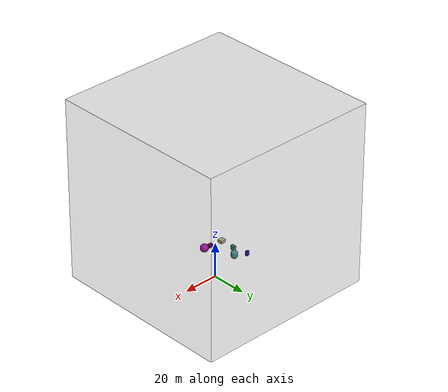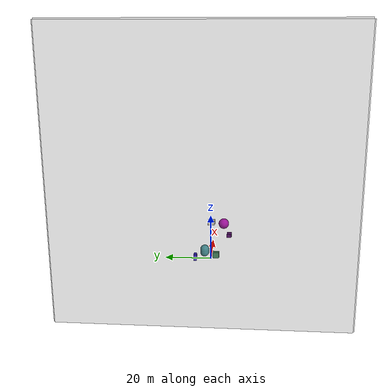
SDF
<!-- seed: 1724979624 -->
<sdf version='1.11'>
  <world name='world_0'>
    <gravity>0 0 -9.8066499999999994</gravity>
    <magnetic_field>5.5644999999999998e-06 2.2875799999999999e-05 -4.2388400000000002e-05</magnetic_field>
    <wind>
      <linear_velocity>0 1 2</linear_velocity>
    </wind>
    <physics default='false' type='ode'>
      <max_step_size>0.001</max_step_size>
      <real_time_factor>1</real_time_factor>
      <max_contacts>20</max_contacts>
    </physics>
    <model name='model_0'>
      <static>false</static>
      <self_collide>true</self_collide>
      <allow_auto_disable>true</allow_auto_disable>
      <enable_wind>false</enable_wind>
      <pose>-8.0707873542373481 -0.69772456056332288 2.2594010672318356 0 0 0</pose>
      <link name='link_2583'>
        <pose>-7.3045261040177634 -2.3845480290694665 6.9102654524008864 0 0 0</pose>
        <inertial>
          <pose>0 0 0 0 0 0</pose>
          <mass>1</mass>
          <inertia>
            <ixx>1</ixx>
            <ixy>0</ixy>
            <ixz>0</ixz>
            <iyy>1</iyy>
            <iyz>0</iyz>
            <izz>1</izz>
          </inertia>
        </inertial>
        <enable_wind>false</enable_wind>
        <collision name='collision_2583'>
          <pose>0 0 0 0 0 0</pose>
          <geometry>
            <box>
              <size>1.4634423946024051 2.443693463370165 2.3987163006066572</size>
            </box>
          </geometry>
          <surface>
            <contact>
              <collide_bitmask>255</collide_bitmask>
            </contact>
            <friction>
              <ode>
                <mu>1</mu>
                <mu2>1</mu2>
                <slip1>0</slip1>
                <slip2>0</slip2>
                <fdir1>0 0 0</fdir1>
              </ode>
            </friction>
          </surface>
        </collision>
        <visual name='visual_2583'>
          <pose>0 0 0 0 0 0</pose>
          <geometry>
            <box>
              <size>1.4634423946024051 2.443693463370165 2.3987163006066572</size>
            </box>
          </geometry>
          <cast_shadows>true</cast_shadows>
          <laser_retro>0</laser_retro>
          <transparency>0</transparency>
          <visibility_flags>4294967295</visibility_flags>
          <material>
            <ambient>0.261847019 0.533413112 0.366011858 1</ambient>
            <diffuse>0.261847019 0.533413112 0.366011858 1</diffuse>
            <specular>0 0 0 1</specular>
            <emissive>0 0 0 1</emissive>
            <render_order>0</render_order>
            <lighting>true</lighting>
            <double_sided>false</double_sided>
            <shader type='pixel'/>
          </material>
        </visual>
      </link>
      <link name='link_2584'>
        <pose>-3.4513834666565435 2.4692504897688536 6.7790588621172008 0 0 0</pose>
        <inertial>
          <pose>0 0 0 0 0 0</pose>
          <mass>1</mass>
          <inertia>
            <ixx>1</ixx>
            <ixy>0</ixy>
            <ixz>0</ixz>
            <iyy>1</iyy>
            <iyz>0</iyz>
            <izz>1</izz>
          </inertia>
        </inertial>
        <enable_wind>false</enable_wind>
        <collision name='collision_2584'>
          <pose>0 0 0 0 0 0</pose>
          <geometry>
            <capsule>
              <radius>1.8120755912079525</radius>
              <length>1.2311113815906576</length>
            </capsule>
          </geometry>
          <surface>
            <contact>
              <collide_bitmask>255</collide_bitmask>
            </contact>
            <friction>
              <ode>
                <mu>1</mu>
                <mu2>1</mu2>
                <slip1>0</slip1>
                <slip2>0</slip2>
                <fdir1>0 0 0</fdir1>
              </ode>
            </friction>
          </surface>
        </collision>
        <visual name='visual_2584'>
          <pose>0 0 0 0 0 0</pose>
          <geometry>
            <capsule>
              <radius>1.8120755912079525</radius>
              <length>1.2311113815906576</length>
            </capsule>
          </geometry>
          <cast_shadows>true</cast_shadows>
          <laser_retro>0</laser_retro>
          <transparency>0</transparency>
          <visibility_flags>4294967295</visibility_flags>
          <material>
            <ambient>0.277225971 0.597328305 0.623601854 1</ambient>
            <diffuse>0.277225971 0.597328305 0.623601854 1</diffuse>
            <specular>0 0 0 1</specular>
            <emissive>0 0 0 1</emissive>
            <render_order>0</render_order>
            <lighting>true</lighting>
            <double_sided>false</double_sided>
            <shader type='pixel'/>
          </material>
        </visual>
      </link>
      <link name='link_2585'>
        <pose>-9.2693195126829977 5.8635718097320684 6.5880485418258941 0 0 0</pose>
        <inertial>
          <pose>0 0 0 0 0 0</pose>
          <mass>1</mass>
          <inertia>
            <ixx>1</ixx>
            <ixy>0</ixy>
            <ixz>0</ixz>
            <iyy>1</iyy>
            <iyz>0</iyz>
            <izz>1</izz>
          </inertia>
        </inertial>
        <enable_wind>false</enable_wind>
        <collision name='collision_2585'>
          <pose>0 0 0 0 0 0</pose>
          <geometry>
            <box>
              <size>1.5711649135017587 1.143254955082583 2.6854664915171185</size>
            </box>
          </geometry>
          <surface>
            <contact>
              <collide_bitmask>255</collide_bitmask>
            </contact>
            <friction>
              <ode>
                <mu>1</mu>
                <mu2>1</mu2>
                <slip1>0</slip1>
                <slip2>0</slip2>
                <fdir1>0 0 0</fdir1>
              </ode>
            </friction>
          </surface>
        </collision>
        <visual name='visual_2585'>
          <pose>0 0 0 0 0 0</pose>
          <geometry>
            <box>
              <size>1.5711649135017587 1.143254955082583 2.6854664915171185</size>
            </box>
          </geometry>
          <cast_shadows>true</cast_shadows>
          <laser_retro>0</laser_retro>
          <transparency>0</transparency>
          <visibility_flags>4294967295</visibility_flags>
          <material>
            <ambient>0.199275792 0.0913406685 0.801660061 1</ambient>
            <diffuse>0.199275792 0.0913406685 0.801660061 1</diffuse>
            <specular>0 0 0 1</specular>
            <emissive>0 0 0 1</emissive>
            <render_order>0</render_order>
            <lighting>true</lighting>
            <double_sided>false</double_sided>
            <shader type='pixel'/>
          </material>
        </visual>
      </link>
      <joint name='joint_1722' type='universal'>
        <pose>0 0 0 0 0 0</pose>
        <parent>link_2585</parent>
        <child>link_2584</child>
        <axis>
          <xyz>0.85242687967332031 0.42372519877772657 0.30630927300880539</xyz>
          <limit>
            <lower>-inf</lower>
            <upper>inf</upper>
            <effort>inf</effort>
            <velocity>1.8208619715535412</velocity>
            <stiffness>100000000</stiffness>
            <dissipation>1</dissipation>
          </limit>
          <dynamics>
            <spring_reference>0</spring_reference>
            <spring_stiffness>0</spring_stiffness>
            <damping>0</damping>
            <friction>0</friction>
          </dynamics>
        </axis>
        <axis2>
          <xyz>0.52710188850615902 0.44979872945138527 0.72100256734436141</xyz>
          <limit>
            <lower>-inf</lower>
            <upper>inf</upper>
            <effort>inf</effort>
            <velocity>9.184977412617803</velocity>
            <stiffness>100000000</stiffness>
            <dissipation>1</dissipation>
          </limit>
          <dynamics>
            <spring_reference>0</spring_reference>
            <spring_stiffness>0</spring_stiffness>
            <damping>0</damping>
            <friction>0</friction>
          </dynamics>
        </axis2>
      </joint>
      <joint name='joint_1723' type='gearbox'>
        <pose>0 0 0 0 0 0</pose>
        <parent>link_2583</parent>
        <child>link_2584</child>
        <axis>
          <xyz>0.61936682671014598 0.37049562145010123 0.69218330553207319</xyz>
          <limit>
            <lower>-inf</lower>
            <upper>inf</upper>
            <effort>inf</effort>
            <velocity>2.124975156918735</velocity>
            <stiffness>100000000</stiffness>
            <dissipation>1</dissipation>
          </limit>
          <dynamics>
            <spring_reference>0</spring_reference>
            <spring_stiffness>0</spring_stiffness>
            <damping>0</damping>
            <friction>0</friction>
          </dynamics>
        </axis>
        <axis2>
          <xyz>0.61863500804658178 0.7338672351933897 0.28058796825383614</xyz>
          <limit>
            <lower>-inf</lower>
            <upper>inf</upper>
            <effort>inf</effort>
            <velocity>3.9874980609991706</velocity>
            <stiffness>100000000</stiffness>
            <dissipation>1</dissipation>
          </limit>
          <dynamics>
            <spring_reference>0</spring_reference>
            <spring_stiffness>0</spring_stiffness>
            <damping>0</damping>
            <friction>0</friction>
          </dynamics>
        </axis2>
      </joint>
    </model>
    <model name='model_1'>
      <static>true</static>
      <self_collide>true</self_collide>
      <allow_auto_disable>true</allow_auto_disable>
      <enable_wind>false</enable_wind>
      <pose>4.6251536302994118 1.5689750210113633 9.136082543208726 0 0 0</pose>
      <link name='link_2586'>
        <pose>-8.5897617935628201 -9.6857169781842778 3.903685550745136 0 0 0</pose>
        <inertial>
          <pose>0 0 0 0 0 0</pose>
          <mass>1</mass>
          <inertia>
            <ixx>1</ixx>
            <ixy>0</ixy>
            <ixz>0</ixz>
            <iyy>1</iyy>
            <iyz>0</iyz>
            <izz>1</izz>
          </inertia>
        </inertial>
        <enable_wind>false</enable_wind>
        <collision name='collision_2586'>
          <pose>0 0 0 0 0 0</pose>
          <geometry>
            <box>
              <size>2.5830815264617906 1.9129698762533589 1.5271695169313693</size>
            </box>
          </geometry>
          <surface>
            <contact>
              <collide_bitmask>255</collide_bitmask>
            </contact>
            <friction>
              <ode>
                <mu>1</mu>
                <mu2>1</mu2>
                <slip1>0</slip1>
                <slip2>0</slip2>
                <fdir1>0 0 0</fdir1>
              </ode>
            </friction>
          </surface>
        </collision>
        <visual name='visual_2586'>
          <pose>0 0 0 0 0 0</pose>
          <geometry>
            <box>
              <size>2.5830815264617906 1.9129698762533589 1.5271695169313693</size>
            </box>
          </geometry>
          <cast_shadows>true</cast_shadows>
          <laser_retro>0</laser_retro>
          <transparency>0</transparency>
          <visibility_flags>4294967295</visibility_flags>
          <material>
            <ambient>0.329019338 0.0302817933 0.415911525 1</ambient>
            <diffuse>0.329019338 0.0302817933 0.415911525 1</diffuse>
            <specular>0 0 0 1</specular>
            <emissive>0 0 0 1</emissive>
            <render_order>0</render_order>
            <lighting>true</lighting>
            <double_sided>false</double_sided>
            <shader type='pixel'/>
          </material>
        </visual>
      </link>
      <link name='link_2587'>
        <pose>-2.241191784523167 -7.1154457171447216 6.4775021583811654 0 0 0</pose>
        <inertial>
          <pose>0 0 0 0 0 0</pose>
          <mass>1</mass>
          <inertia>
            <ixx>1</ixx>
            <ixy>0</ixy>
            <ixz>0</ixz>
            <iyy>1</iyy>
            <iyz>0</iyz>
            <izz>1</izz>
          </inertia>
        </inertial>
        <enable_wind>false</enable_wind>
        <collision name='collision_2587'>
          <pose>0 0 0 0 0 0</pose>
          <geometry>
            <sphere>
              <radius>2.2107275274310587</radius>
            </sphere>
          </geometry>
          <surface>
            <contact>
              <collide_bitmask>255</collide_bitmask>
            </contact>
            <friction>
              <ode>
                <mu>1</mu>
                <mu2>1</mu2>
                <slip1>0</slip1>
                <slip2>0</slip2>
                <fdir1>0 0 0</fdir1>
              </ode>
            </friction>
          </surface>
        </collision>
        <visual name='visual_2587'>
          <pose>0 0 0 0 0 0</pose>
          <geometry>
            <sphere>
              <radius>2.2107275274310587</radius>
            </sphere>
          </geometry>
          <cast_shadows>true</cast_shadows>
          <laser_retro>0</laser_retro>
          <transparency>0</transparency>
          <visibility_flags>4294967295</visibility_flags>
          <material>
            <ambient>0.716755748 0.0633956417 0.704162359 1</ambient>
            <diffuse>0.716755748 0.0633956417 0.704162359 1</diffuse>
            <specular>0 0 0 1</specular>
            <emissive>0 0 0 1</emissive>
            <render_order>0</render_order>
            <lighting>true</lighting>
            <double_sided>false</double_sided>
            <shader type='pixel'/>
          </material>
        </visual>
      </link>
      <link name='link_2588'>
        <pose>-9.5599574560509417 -2.1542287785687808 9.9364656250636845 0 0 0</pose>
        <inertial>
          <pose>0 0 0 0 0 0</pose>
          <mass>1</mass>
          <inertia>
            <ixx>1</ixx>
            <ixy>0</ixy>
            <ixz>0</ixz>
            <iyy>1</iyy>
            <iyz>0</iyz>
            <izz>1</izz>
          </inertia>
        </inertial>
        <enable_wind>false</enable_wind>
        <collision name='collision_2588'>
          <pose>0 0 0 0 0 0</pose>
          <geometry>
            <box>
              <size>2.906768234402092 2.9179121443797165 1.5588537025396993</size>
            </box>
          </geometry>
          <surface>
            <contact>
              <collide_bitmask>255</collide_bitmask>
            </contact>
            <friction>
              <ode>
                <mu>1</mu>
                <mu2>1</mu2>
                <slip1>0</slip1>
                <slip2>0</slip2>
                <fdir1>0 0 0</fdir1>
              </ode>
            </friction>
          </surface>
        </collision>
        <visual name='visual_2588'>
          <pose>0 0 0 0 0 0</pose>
          <geometry>
            <box>
              <size>2.906768234402092 2.9179121443797165 1.5588537025396993</size>
            </box>
          </geometry>
          <cast_shadows>true</cast_shadows>
          <laser_retro>0</laser_retro>
          <transparency>0</transparency>
          <visibility_flags>4294967295</visibility_flags>
          <material>
            <ambient>0.782947242 0.750403345 0.655881464 1</ambient>
            <diffuse>0.782947242 0.750403345 0.655881464 1</diffuse>
            <specular>0 0 0 1</specular>
            <emissive>0 0 0 1</emissive>
            <render_order>0</render_order>
            <lighting>true</lighting>
            <double_sided>false</double_sided>
            <shader type='pixel'/>
          </material>
        </visual>
      </link>
      <joint name='joint_1724' type='universal'>
        <pose>0 0 0 0 0 0</pose>
        <parent>link_2588</parent>
        <child>link_2586</child>
        <axis>
          <xyz>0.093749474903780064 0.70235460777555225 0.70562670080696044</xyz>
          <limit>
            <lower>-inf</lower>
            <upper>inf</upper>
            <effort>inf</effort>
            <velocity>6.2998830728731594</velocity>
            <stiffness>100000000</stiffness>
            <dissipation>1</dissipation>
          </limit>
          <dynamics>
            <spring_reference>0</spring_reference>
            <spring_stiffness>0</spring_stiffness>
            <damping>0</damping>
            <friction>0</friction>
          </dynamics>
        </axis>
        <axis2>
          <xyz>0.59468924134155154 0.27256536334230203 0.75634174084119454</xyz>
          <limit>
            <lower>-inf</lower>
            <upper>inf</upper>
            <effort>inf</effort>
            <velocity>8.1001579128968899</velocity>
            <stiffness>100000000</stiffness>
            <dissipation>1</dissipation>
          </limit>
          <dynamics>
            <spring_reference>0</spring_reference>
            <spring_stiffness>0</spring_stiffness>
            <damping>0</damping>
            <friction>0</friction>
          </dynamics>
        </axis2>
      </joint>
      <joint name='joint_1725' type='revolute'>
        <pose>0 0 0 0 0 0</pose>
        <parent>link_2588</parent>
        <child>link_2586</child>
        <axis>
          <xyz>0.21316153520182027 0.97136778749457175 0.1049132085502289</xyz>
          <limit>
            <lower>-inf</lower>
            <upper>inf</upper>
            <effort>inf</effort>
            <velocity>0.015717458553714536</velocity>
            <stiffness>100000000</stiffness>
            <dissipation>1</dissipation>
          </limit>
          <dynamics>
            <spring_reference>0</spring_reference>
            <spring_stiffness>0</spring_stiffness>
            <damping>0</damping>
            <friction>0</friction>
          </dynamics>
        </axis>
        <axis2>
          <xyz>0.71959311499276313 0.46422993316131678 0.51640712428475588</xyz>
          <limit>
            <lower>-inf</lower>
            <upper>inf</upper>
            <effort>inf</effort>
            <velocity>9.8600730040724844</velocity>
            <stiffness>100000000</stiffness>
            <dissipation>1</dissipation>
          </limit>
          <dynamics>
            <spring_reference>0</spring_reference>
            <spring_stiffness>0</spring_stiffness>
            <damping>0</damping>
            <friction>0</friction>
          </dynamics>
        </axis2>
      </joint>
    </model>
    <model name='ground_model'>
      <static>true</static>
      <self_collide>false</self_collide>
      <allow_auto_disable>true</allow_auto_disable>
      <enable_wind>false</enable_wind>
      <pose>0 0 0 0 0 0</pose>
      <link name='ground_link'>
        <pose>0 0 0 0 0 0</pose>
        <inertial>
          <pose>0 0 0 0 0 0</pose>
          <mass>1</mass>
          <inertia>
            <ixx>1</ixx>
            <ixy>0</ixy>
            <ixz>0</ixz>
            <iyy>1</iyy>
            <iyz>0</iyz>
            <izz>1</izz>
          </inertia>
        </inertial>
        <enable_wind>false</enable_wind>
        <collision name='ground_collision'>
          <pose>0 0 0 0 0 0</pose>
          <geometry>
            <plane>
              <normal>0 0 1</normal>
              <size>100 100</size>
            </plane>
          </geometry>
          <surface>
            <contact>
              <collide_bitmask>255</collide_bitmask>
            </contact>
            <friction>
              <ode>
                <mu>1</mu>
                <mu2>1</mu2>
                <slip1>0</slip1>
                <slip2>0</slip2>
                <fdir1>0 0 0</fdir1>
              </ode>
            </friction>
          </surface>
        </collision>
      </link>
    </model>
    <model name='ceiling_model'>
      <static>true</static>
      <self_collide>false</self_collide>
      <allow_auto_disable>true</allow_auto_disable>
      <enable_wind>false</enable_wind>
      <pose>0 0 100 0 0 0</pose>
      <link name='ceiling_link'>
        <pose>0 0 0 0 0 0</pose>
        <inertial>
          <pose>0 0 0 0 0 0</pose>
          <mass>1</mass>
          <inertia>
            <ixx>1</ixx>
            <ixy>0</ixy>
            <ixz>0</ixz>
            <iyy>1</iyy>
            <iyz>0</iyz>
            <izz>1</izz>
          </inertia>
        </inertial>
        <enable_wind>false</enable_wind>
        <collision name='ceiling_collision'>
          <pose>0 0 0 0 0 0</pose>
          <geometry>
            <box>
              <size>102 102 3</size>
            </box>
          </geometry>
          <surface>
            <contact>
              <collide_bitmask>255</collide_bitmask>
            </contact>
            <friction>
              <ode>
                <mu>1</mu>
                <mu2>1</mu2>
                <slip1>0</slip1>
                <slip2>0</slip2>
                <fdir1>0 0 0</fdir1>
              </ode>
            </friction>
          </surface>
        </collision>
        <visual name='ceiling_visual'>
          <pose>0 0 0 0 0 0</pose>
          <geometry>
            <box>
              <size>102 102 3</size>
            </box>
          </geometry>
          <cast_shadows>true</cast_shadows>
          <laser_retro>0</laser_retro>
          <transparency>0</transparency>
          <visibility_flags>4294967295</visibility_flags>
          <material>
            <ambient>0.200000003 0.200000003 0.200000003 0.200000003</ambient>
            <diffuse>0.200000003 0.200000003 0.200000003 0.200000003</diffuse>
            <specular>0 0 0 1</specular>
            <emissive>0 0 0 1</emissive>
            <render_order>0</render_order>
            <lighting>true</lighting>
            <double_sided>false</double_sided>
            <shader type='pixel'/>
          </material>
        </visual>
      </link>
    </model>
    <model name='west_model'>
      <static>true</static>
      <self_collide>false</self_collide>
      <allow_auto_disable>true</allow_auto_disable>
      <enable_wind>false</enable_wind>
      <pose>0 50 50 0 0 0</pose>
      <link name='west_link'>
        <pose>0 0 0 0 0 0</pose>
        <inertial>
          <pose>0 0 0 0 0 0</pose>
          <mass>1</mass>
          <inertia>
            <ixx>1</ixx>
            <ixy>0</ixy>
            <ixz>0</ixz>
            <iyy>1</iyy>
            <iyz>0</iyz>
            <izz>1</izz>
          </inertia>
        </inertial>
        <enable_wind>false</enable_wind>
        <collision name='west_collision'>
          <pose>0 0 0 0 0 0</pose>
          <geometry>
            <box>
              <size>102 3 102</size>
            </box>
          </geometry>
          <surface>
            <contact>
              <collide_bitmask>255</collide_bitmask>
            </contact>
            <friction>
              <ode>
                <mu>1</mu>
                <mu2>1</mu2>
                <slip1>0</slip1>
                <slip2>0</slip2>
                <fdir1>0 0 0</fdir1>
              </ode>
            </friction>
          </surface>
        </collision>
        <visual name='west_visual'>
          <pose>0 0 0 0 0 0</pose>
          <geometry>
            <box>
              <size>102 3 102</size>
            </box>
          </geometry>
          <cast_shadows>true</cast_shadows>
          <laser_retro>0</laser_retro>
          <transparency>0</transparency>
          <visibility_flags>4294967295</visibility_flags>
          <material>
            <ambient>0.200000003 0.200000003 0.200000003 0.200000003</ambient>
            <diffuse>0.200000003 0.200000003 0.200000003 0.200000003</diffuse>
            <specular>0 0 0 1</specular>
            <emissive>0 0 0 1</emissive>
            <render_order>0</render_order>
            <lighting>true</lighting>
            <double_sided>false</double_sided>
            <shader type='pixel'/>
          </material>
        </visual>
      </link>
    </model>
    <model name='east_model'>
      <static>true</static>
      <self_collide>false</self_collide>
      <allow_auto_disable>true</allow_auto_disable>
      <enable_wind>false</enable_wind>
      <pose>0 -50 50 0 0 0</pose>
      <link name='east_link'>
        <pose>0 0 0 0 0 0</pose>
        <inertial>
          <pose>0 0 0 0 0 0</pose>
          <mass>1</mass>
          <inertia>
            <ixx>1</ixx>
            <ixy>0</ixy>
            <ixz>0</ixz>
            <iyy>1</iyy>
            <iyz>0</iyz>
            <izz>1</izz>
          </inertia>
        </inertial>
        <enable_wind>false</enable_wind>
        <collision name='east_collision'>
          <pose>0 0 0 0 0 0</pose>
          <geometry>
            <box>
              <size>102 3 102</size>
            </box>
          </geometry>
          <surface>
            <contact>
              <collide_bitmask>255</collide_bitmask>
            </contact>
            <friction>
              <ode>
                <mu>1</mu>
                <mu2>1</mu2>
                <slip1>0</slip1>
                <slip2>0</slip2>
                <fdir1>0 0 0</fdir1>
              </ode>
            </friction>
          </surface>
        </collision>
        <visual name='east_visual'>
          <pose>0 0 0 0 0 0</pose>
          <geometry>
            <box>
              <size>102 3 102</size>
            </box>
          </geometry>
          <cast_shadows>true</cast_shadows>
          <laser_retro>0</laser_retro>
          <transparency>0</transparency>
          <visibility_flags>4294967295</visibility_flags>
          <material>
            <ambient>0.200000003 0.200000003 0.200000003 0.200000003</ambient>
            <diffuse>0.200000003 0.200000003 0.200000003 0.200000003</diffuse>
            <specular>0 0 0 1</specular>
            <emissive>0 0 0 1</emissive>
            <render_order>0</render_order>
            <lighting>true</lighting>
            <double_sided>false</double_sided>
            <shader type='pixel'/>
          </material>
        </visual>
      </link>
    </model>
    <model name='north_model'>
      <static>true</static>
      <self_collide>false</self_collide>
      <allow_auto_disable>true</allow_auto_disable>
      <enable_wind>false</enable_wind>
      <pose>50 0 50 0 0 0</pose>
      <link name='north_link'>
        <pose>0 0 0 0 0 0</pose>
        <inertial>
          <pose>0 0 0 0 0 0</pose>
          <mass>1</mass>
          <inertia>
            <ixx>1</ixx>
            <ixy>0</ixy>
            <ixz>0</ixz>
            <iyy>1</iyy>
            <iyz>0</iyz>
            <izz>1</izz>
          </inertia>
        </inertial>
        <enable_wind>false</enable_wind>
        <collision name='north_collision'>
          <pose>0 0 0 0 0 0</pose>
          <geometry>
            <box>
              <size>3 102 102</size>
            </box>
          </geometry>
          <surface>
            <contact>
              <collide_bitmask>255</collide_bitmask>
            </contact>
            <friction>
              <ode>
                <mu>1</mu>
                <mu2>1</mu2>
                <slip1>0</slip1>
                <slip2>0</slip2>
                <fdir1>0 0 0</fdir1>
              </ode>
            </friction>
          </surface>
        </collision>
        <visual name='north_visual'>
          <pose>0 0 0 0 0 0</pose>
          <geometry>
            <box>
              <size>3 102 102</size>
            </box>
          </geometry>
          <cast_shadows>true</cast_shadows>
          <laser_retro>0</laser_retro>
          <transparency>0</transparency>
          <visibility_flags>4294967295</visibility_flags>
          <material>
            <ambient>0.200000003 0.200000003 0.200000003 0.200000003</ambient>
            <diffuse>0.200000003 0.200000003 0.200000003 0.200000003</diffuse>
            <specular>0 0 0 1</specular>
            <emissive>0 0 0 1</emissive>
            <render_order>0</render_order>
            <lighting>true</lighting>
            <double_sided>false</double_sided>
            <shader type='pixel'/>
          </material>
        </visual>
      </link>
    </model>
    <model name='south_model'>
      <static>true</static>
      <self_collide>false</self_collide>
      <allow_auto_disable>true</allow_auto_disable>
      <enable_wind>false</enable_wind>
      <pose>-50 0 50 0 0 0</pose>
      <link name='south_link'>
        <pose>0 0 0 0 0 0</pose>
        <inertial>
          <pose>0 0 0 0 0 0</pose>
          <mass>1</mass>
          <inertia>
            <ixx>1</ixx>
            <ixy>0</ixy>
            <ixz>0</ixz>
            <iyy>1</iyy>
            <iyz>0</iyz>
            <izz>1</izz>
          </inertia>
        </inertial>
        <enable_wind>false</enable_wind>
        <collision name='south_collision'>
          <pose>0 0 0 0 0 0</pose>
          <geometry>
            <box>
              <size>3 102 102</size>
            </box>
          </geometry>
          <surface>
            <contact>
              <collide_bitmask>255</collide_bitmask>
            </contact>
            <friction>
              <ode>
                <mu>1</mu>
                <mu2>1</mu2>
                <slip1>0</slip1>
                <slip2>0</slip2>
                <fdir1>0 0 0</fdir1>
              </ode>
            </friction>
          </surface>
        </collision>
        <visual name='south_visual'>
          <pose>0 0 0 0 0 0</pose>
          <geometry>
            <box>
              <size>3 102 102</size>
            </box>
          </geometry>
          <cast_shadows>true</cast_shadows>
          <laser_retro>0</laser_retro>
          <transparency>0</transparency>
          <visibility_flags>4294967295</visibility_flags>
          <material>
            <ambient>0.200000003 0.200000003 0.200000003 0.200000003</ambient>
            <diffuse>0.200000003 0.200000003 0.200000003 0.200000003</diffuse>
            <specular>0 0 0 1</specular>
            <emissive>0 0 0 1</emissive>
            <render_order>0</render_order>
            <lighting>true</lighting>
            <double_sided>false</double_sided>
            <shader type='pixel'/>
          </material>
        </visual>
      </link>
    </model>
    <atmosphere type='adiabatic'>
      <temperature>288.14999999999998</temperature>
      <pressure>101325</pressure>
      <temperature_gradient>-0.0064999999999999997</temperature_gradient>
    </atmosphere>
    <scene>
      <ambient>0.400000006 0.400000006 0.400000006 1</ambient>
      <background>0.699999988 0.699999988 0.699999988 1</background>
      <grid>true</grid>
      <origin_visual>true</origin_visual>
      <shadows>true</shadows>
    </scene>
  </world>
</sdf>
